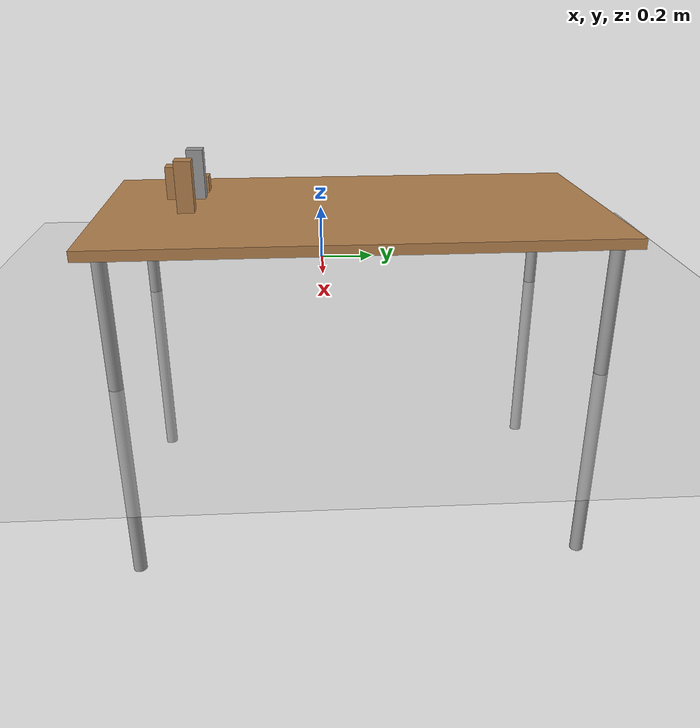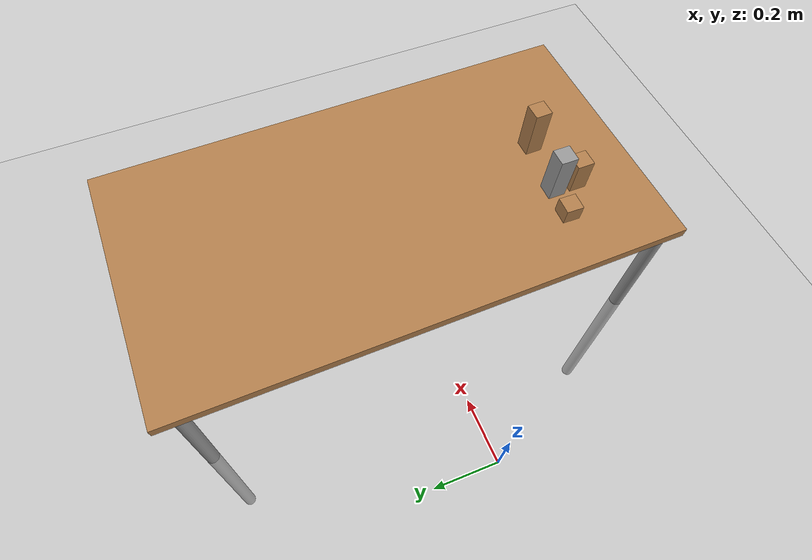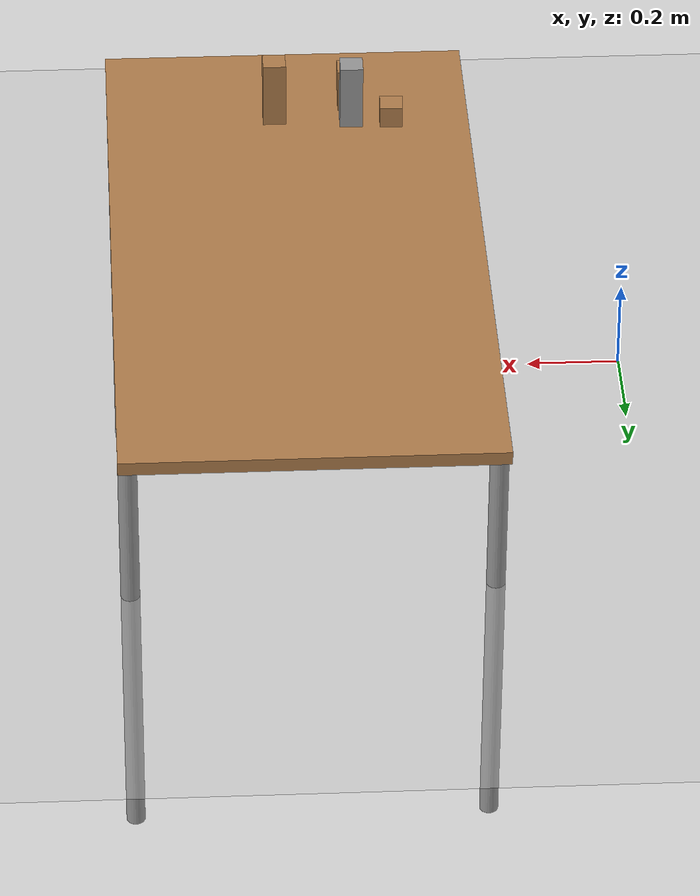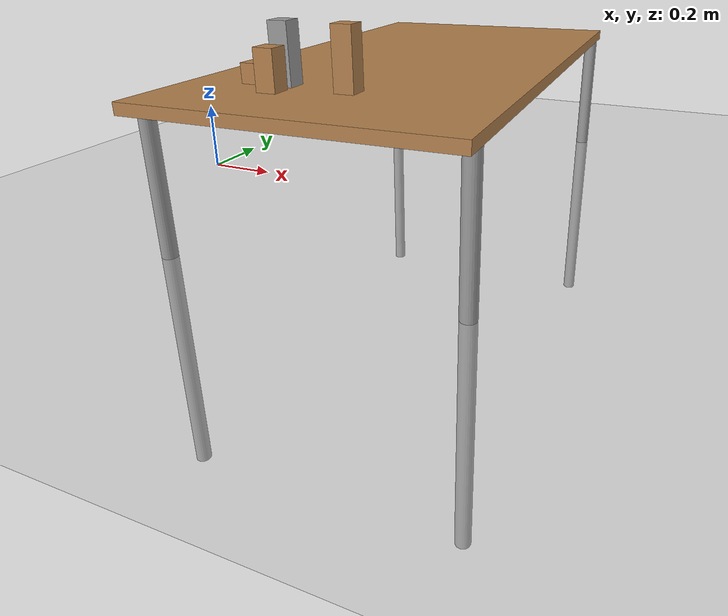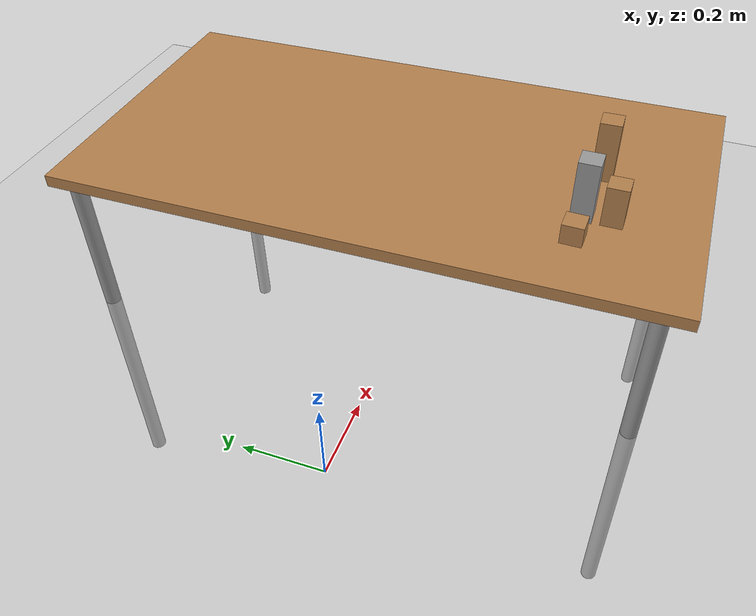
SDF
<sdf version="1.4">
 <world name="default">
  <model name="ground_plane">
   <static>1</static>
   <link name="link">
    <collision name="collision">
     <geometry><plane><normal>0 0 1</normal><size>100 100</size></plane></geometry>
     <surface><friction><ode><mu>100</mu><mu2>50</mu2></ode></friction></surface>
    </collision>
    <visual name="visual">
     <cast_shadows>0</cast_shadows>
     <geometry><plane><normal>0 0 1</normal><size>100 100</size></plane></geometry>
     <material>
      <script><uri>file://media/materials/scripts/gazebo.material</uri><name>Gazebo/Grey</name></script>
     </material>
    </visual>
    <velocity_decay><linear>0</linear><angular>0</angular></velocity_decay>
   </link>
  </model>
  <light name="sun" type="directional">
   <pose>0 0 10 0 -0 0</pose>
   <diffuse>0.8 0.8 0.8 1</diffuse>
   <specular>0.2 0.2 0.2 1</specular>
   <attenuation>
    <range>1000</range>
    <constant>0.9</constant>
    <linear>0.01</linear>
    <quadratic>0.001</quadratic>
   </attenuation>
   <direction>-0.5 0.1 -0.9</direction>
  </light>
  <physics type="ode">
   <real_time_update_rate>1000</real_time_update_rate>
   <gravity>0 0 -9.81</gravity>
   <max_step_size>0.001</max_step_size>
   <real_time_factor>1</real_time_factor>
  </physics>
  <scene><ambient>0.4 0.4 0.4 1</ambient><background>0.7 0.7 0.7 1</background><shadows>1</shadows></scene>
  <spherical_coordinates>
   <surface_model>EARTH_WGS84</surface_model>
   <latitude_deg>0</latitude_deg>
   <longitude_deg>0</longitude_deg>
   <elevation>0</elevation>
   <heading_deg>0</heading_deg>
  </spherical_coordinates>
  <model name="custom_2">
   <link name="link">
    <inertial>
     <mass>0.0565</mass>
     <inertia>
      <ixx>2.35417e-05</ixx>
      <ixy>0</ixy>
      <ixz>0</ixz>
      <iyy>2.35417e-05</iyy>
      <iyz>0</iyz>
      <izz>2.35417e-05</izz>
     </inertia>
    </inertial>
    <collision name="collision">
     <geometry><box><size>0.05 0.05 0.1</size></box></geometry>
     <surface><contact><ode><max_vel>0.1</max_vel><min_depth>0.001</min_depth></ode></contact></surface>
    </collision>
    <visual name="visual">
     <geometry><box><size>0.05 0.05 0.1</size></box></geometry>
     <material>
      <script><uri>file://media/materials/scripts/gazebo.material</uri><name>Gazebo/Wood</name></script>
     </material>
    </visual>
    <velocity_decay><linear>0</linear><angular>0</angular></velocity_decay>
   </link>
   <pose>0.574426 -0.46255 0.441829 0.000189 -0.000103 -0.000108</pose>
   <static>0</static>
  </model>
  <model name="custom_3">
   <link name="link">
    <inertial>
     <mass>0.0565</mass>
     <inertia>
      <ixx>2.35417e-05</ixx>
      <ixy>0</ixy>
      <ixz>0</ixz>
      <iyy>2.35417e-05</iyy>
      <iyz>0</iyz>
      <izz>2.35417e-05</izz>
     </inertia>
    </inertial>
    <collision name="collision">
     <geometry><box><size>0.05 0.05 0.05</size></box></geometry>
     <surface><contact><ode><max_vel>0.1</max_vel><min_depth>0.001</min_depth></ode></contact></surface>
    </collision>
    <visual name="visual">
     <geometry><box><size>0.05 0.05 0.05</size></box></geometry>
     <material>
      <script><uri>file://media/materials/scripts/gazebo.material</uri><name>Gazebo/Wood</name></script>
     </material>
    </visual>
    <velocity_decay><linear>0</linear><angular>0</angular></velocity_decay>
   </link>
   <pose>0.483252 -0.391408 0.415866 -0.001064 -0.008231 -0.028031</pose>
   <static>0</static>
  </model>
  <model name="custom_1_0">
   <link name="link">
    <inertial>
     <mass>0.0565</mass>
     <inertia>
      <ixx>2.35417e-05</ixx>
      <ixy>0</ixy>
      <ixz>0</ixz>
      <iyy>2.35417e-05</iyy>
      <iyz>0</iyz>
      <izz>2.35417e-05</izz>
     </inertia>
    </inertial>
    <collision name="collision">
     <geometry><box><size>0.05 0.05 0.15</size></box></geometry>
     <surface><contact><ode><max_vel>0.1</max_vel><min_depth>0.001</min_depth></ode></contact></surface>
    </collision>
    <visual name="visual">
     <geometry><box><size>0.05 0.05 0.15</size></box></geometry>
     <material>
      <script><uri>file://media/materials/scripts/gazebo.material</uri><name>Gazebo/Wood</name></script>
     </material>
    </visual>
    <velocity_decay><linear>0</linear><angular>0</angular></velocity_decay>
   </link>
   <pose>0.74117 -0.410633 0.468792 0.008121 -0.000301 -1.55049</pose>
   <static>0</static>
  </model>
  <model name="custom_table">
   <static>1</static>
   <link name="link">
    <collision name="surface">
     <geometry><box><size>1.5 0.8 0.03</size></box></geometry>
     <surface><friction><ode><mu>0.6</mu><mu2>0.6</mu2></ode></friction></surface>
    </collision>
    <visual name="visual1">
     <geometry><box><size>1.5 0.8 0.03</size></box></geometry>
     <material>
      <script><uri>file://media/materials/scripts/gazebo.material</uri><name>Gazebo/Wood</name></script>
     </material>
    </visual>
    <collision name="front_left_leg">
     <pose>0.68 0.38 0.5 0 -0 0</pose>
     <geometry><cylinder><radius>0.02</radius><length>1</length></cylinder></geometry>
    </collision>
    <visual name="front_left_leg">
     <pose>0.68 0.38 0.5 0 -0 0</pose>
     <geometry><cylinder><radius>0.02</radius><length>1</length></cylinder></geometry>
     <material>
      <script><uri>file://media/materials/scripts/gazebo.material</uri><name>Gazebo/Grey</name></script>
     </material>
    </visual>
    <collision name="front_right_leg">
     <pose>0.68 -0.38 0.5 0 -0 0</pose>
     <geometry><cylinder><radius>0.02</radius><length>1</length></cylinder></geometry>
    </collision>
    <visual name="front_right_leg">
     <pose>0.68 -0.38 0.5 0 -0 0</pose>
     <geometry><cylinder><radius>0.02</radius><length>1</length></cylinder></geometry>
     <material>
      <script><uri>file://media/materials/scripts/gazebo.material</uri><name>Gazebo/Grey</name></script>
     </material>
    </visual>
    <collision name="back_right_leg">
     <pose>-0.68 -0.38 0.5 0 -0 0</pose>
     <geometry><cylinder><radius>0.02</radius><length>1</length></cylinder></geometry>
    </collision>
    <visual name="back_right_leg">
     <pose>-0.68 -0.38 0.5 0 -0 0</pose>
     <geometry><cylinder><radius>0.02</radius><length>1</length></cylinder></geometry>
     <material>
      <script><uri>file://media/materials/scripts/gazebo.material</uri><name>Gazebo/Grey</name></script>
     </material>
    </visual>
    <collision name="back_left_leg">
     <pose>-0.68 0.38 0.5 0 -0 0</pose>
     <geometry><cylinder><radius>0.02</radius><length>1</length></cylinder></geometry>
    </collision>
    <visual name="back_left_leg">
     <pose>-0.68 0.38 0.5 0 -0 0</pose>
     <geometry><cylinder><radius>0.02</radius><length>1</length></cylinder></geometry>
     <material>
      <script><uri>file://media/materials/scripts/gazebo.material</uri><name>Gazebo/Grey</name></script>
     </material>
    </visual>
    <velocity_decay><linear>0</linear><angular>0</angular></velocity_decay>
   </link>
   <pose>0.706521 0.08117 0.378441 3.13347 0.000225 1.5819</pose>
  </model>
  <model name="target">
   <link name="link">
    <inertial>
     <mass>0.0565</mass>
     <inertia>
      <ixx>2.35417e-05</ixx>
      <ixy>0</ixy>
      <ixz>0</ixz>
      <iyy>2.35417e-05</iyy>
      <iyz>0</iyz>
      <izz>2.35417e-05</izz>
     </inertia>
    </inertial>
    <collision name="collision">
     <geometry><box><size>0.05 0.05 0.15</size></box></geometry>
     <surface><contact><ode><max_vel>0.1</max_vel><min_depth>0.001</min_depth></ode></contact></surface>
    </collision>
    <visual name="visual">
     <geometry><box><size>0.05 0.05 0.15</size></box></geometry>
     <material>
      <script><uri>file://media/materials/scripts/gazebo.material</uri><name>Gazebo/Grey</name></script>
     </material>
    </visual>
    <velocity_decay><linear>0</linear><angular>0</angular></velocity_decay>
   </link>
   <pose>0.571474 -0.39488 0.466867 0.005919 -0.012301 -0.000903</pose>
   <static>0</static>
  </model>
 </world>
</sdf>
